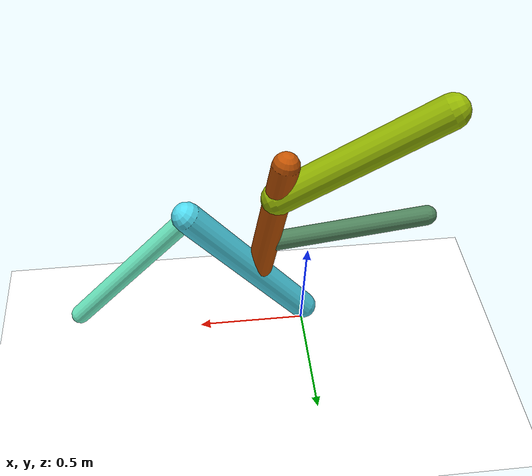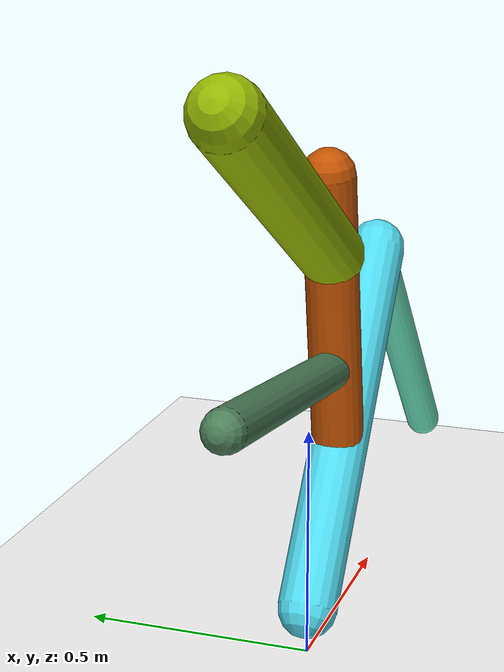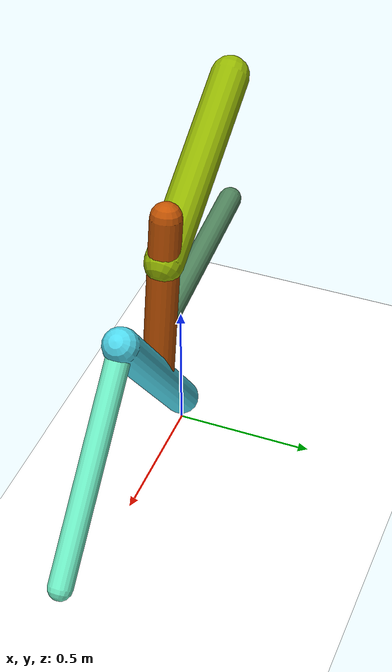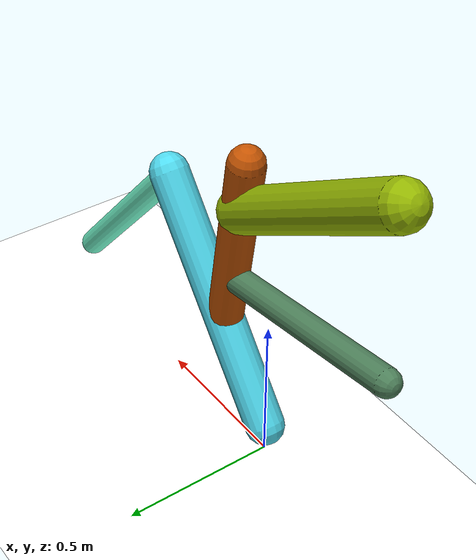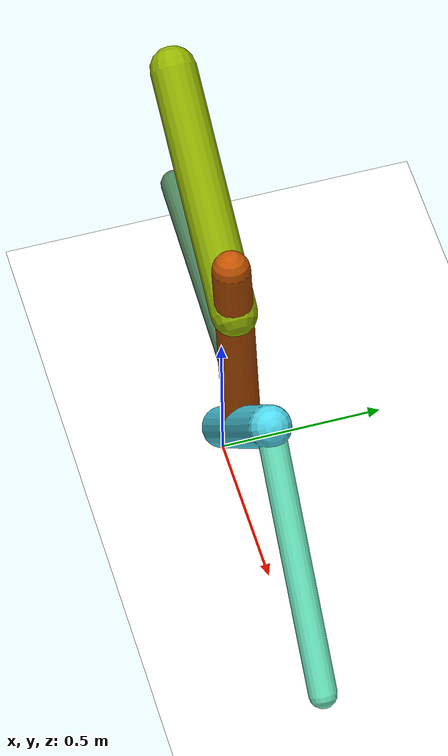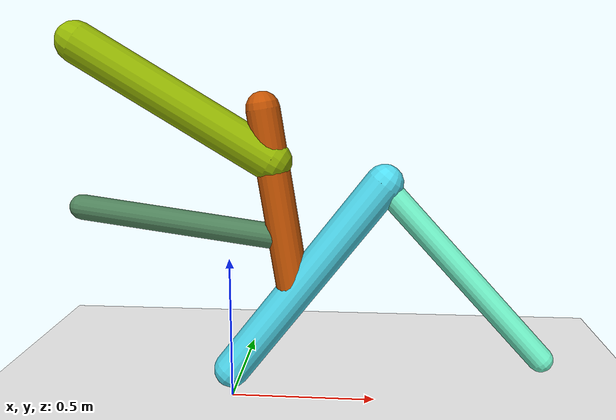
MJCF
<mujoco model="morphology">
  <option timestep="0.01"/>
  <default>
    <default class="/"/>
  </default>
  <asset>
    <texture name="texplane" type="2d" builtin="checker" rgb1="0.1 0.2 0.3" rgb2="0.2 0.3 0.4" width="300" height="300"/>
    <material name="MatPlane" class="/" texture="texplane" texrepeat="20 20" specular="1" shininess="1" reflectance="0.5"/>
  </asset>
  <worldbody>
    <light name="//unnamed_light_0" class="/" directional="true" pos="0 0 1.5" dir="0 0 -1.3" cutoff="1e+02" exponent="1" diffuse="1 1 1" specular="0.1 0.1 0.1"/>
    <geom name="ground" class="/" type="plane" size="15 15 0.5" material="MatPlane" rgba="1 1 1 1"/>
    <body name="body" pos="0 0 0.1">
      <geom name="geom0" class="/" type="capsule" contype="1" conaffinity="1" condim="3" size="0.064" rgba="0.31 0.85 0.93 1" friction="0.4 0.1 0.1" fromto="0 0 0 0.52 0 0.67"/>
      <body name="body1" pos="0.22 0 0.29">
        <geom name="geom1" class="/" type="capsule" contype="1" conaffinity="1" condim="3" size="0.057" rgba="0.77 0.33 0.011 1" friction="0.4 0.1 0.1" fromto="0 0 0 -0.098 0 0.62"/>
        <body name="body2" pos="-0.031 0 0.19">
          <geom name="geom2" class="/" type="capsule" contype="1" conaffinity="1" condim="3" size="0.043" rgba="0.3 0.5 0.35 1" friction="0.4 0.1 0.1" fromto="0 0 0 -0.69 0 0.096"/>
          <joint name="joint2" class="/" type="hinge" axis="0 1 0" limited="true" stiffness="20" range="-52 52" armature="0.1" damping="2"/>
        </body>
        <body name="body3" pos="-0.072 0 0.45">
          <geom name="geom3" class="/" type="capsule" contype="1" conaffinity="1" condim="3" size="0.07" rgba="0.58 0.71 0.0071 1" friction="0.4 0.1 0.1" fromto="0 0 0 -0.63 0 0.38"/>
          <joint name="joint3" class="/" type="hinge" axis="0 1 0" limited="true" stiffness="20" range="-40 40" armature="0.1" damping="2"/>
        </body>
        <joint name="joint1" class="/" type="hinge" axis="0 1 0" limited="true" stiffness="20" range="-65 65" armature="0.1" damping="2"/>
      </body>
      <body name="body4" pos="0.52 0 0.66">
        <geom name="geom4" class="/" type="capsule" contype="1" conaffinity="1" condim="3" size="0.043" rgba="0.45 0.97 0.8 1" friction="0.4 0.1 0.1" fromto="0 0 0 0.54 0 -0.59"/>
        <joint name="joint4" class="/" type="hinge" axis="0 1 0" limited="true" stiffness="20" range="-38 38" armature="0.1" damping="2"/>
      </body>
      <joint name="rootx" class="/" type="slide" axis="1 0 0" limited="false" stiffness="0" armature="0" damping="0"/>
      <joint name="rootz" class="/" type="slide" axis="0 0 1" limited="false" stiffness="0" armature="0" damping="0"/>
      <joint name="rooty" class="/" type="hinge" axis="0 1 0" limited="false" stiffness="0" armature="0" damping="0"/>
    </body>
  </worldbody>
  <actuator>
    <motor name="motor2" class="/" ctrllimited="true" ctrlrange="-1 1" gear="1.1e+02" joint="joint2"/>
    <motor name="motor3" class="/" ctrllimited="true" ctrlrange="-1 1" gear="1.4e+02" joint="joint3"/>
    <motor name="motor1" class="/" ctrllimited="true" ctrlrange="-1 1" gear="1.4e+02" joint="joint1"/>
    <motor name="motor4" class="/" ctrllimited="true" ctrlrange="-1 1" gear="1.7e+02" joint="joint4"/>
  </actuator>
  <sensor>
    <subtreelinvel name="velocity" body="body"/>
  </sensor>
</mujoco>
